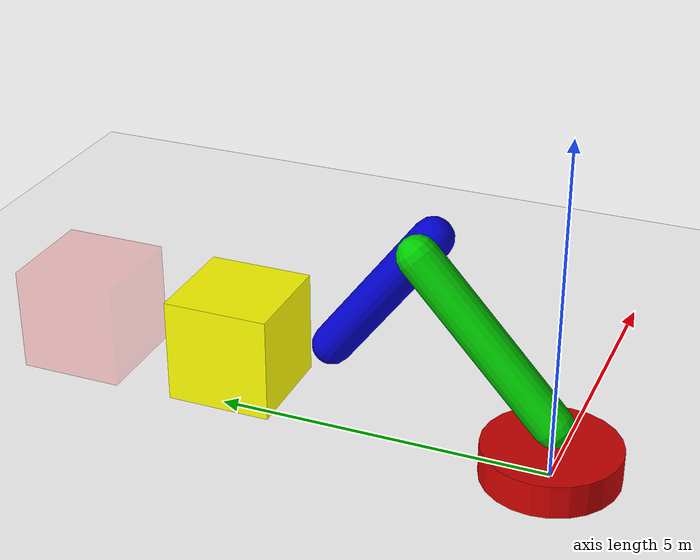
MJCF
<mujoco model="robot_arm">
    <compiler inertiafromgeom="true" angle="degree"/>

    <option timestep="0.005" iterations="50" tolerance="1e-10" solver="Newton" jacobian="dense" cone="pyramidal"/>

    <size nconmax="50" njmax="200" nstack="10000"/>

    <asset>
        <texture type="skybox" builtin="gradient" rgb1="1 1 1" rgb2=".6 .8 1"
                 width="256" height="256"/>
    </asset>

    <worldbody>
        <light pos="0 0 10" dir="0 0 -1" diffuse=".5 .5 .5"/>

        <!-- GROUND -->
        <geom name="ground" type="plane" size="20 20 .001" rgba="1 1 1 1"/>

        <!-- BASE -->
        <body name="base" pos="0 0 0">
            <inertial pos="0 0 .25" mass="50"/>
            <geom name="base" type="cylinder" rgba=".8 0 0 1" fromto="0 0 0 0 0 .5" size="1"/>
            <!-- UPPER ARM -->
            <body name="upper_arm">
                <inertial pos="0 1 1.9" mass="10"/>
                <geom name="upper_arm" type="capsule" density="100" rgba="0 .8 0 1" fromto="0 0 .8 0 2 3" size=".3"/>
                <joint name="shoulder" type="hinge" pos="0 0 .8" axis="1 0 0" range="-48 132"
                       damping="100" stiffness="200" limited="true"/>
                <!-- LOWER ARM -->
                <body name="lower_arm">
                    <inertial pos=".6 2.75 2" mass="10"/>
                    <geom name="lower_arm" type="capsule" density="100" rgba="0 0 .8 1" fromto=".6 2 3 .6 3.5 1" size=".3"/>
                    <joint name="elbow" type="hinge" pos=".6 2 3" axis="1 0 0" range="-79 100"
                       damping="100" stiffness="200" limited="true"/>
                </body>
            </body>
        </body>

        <!-- BOX -->
        <body name="box" pos=".6 5 .8">
            <inertial pos=".6 5 .8" mass="5"/>
            <geom name="box" type="box" rgba="1 1 0 1" size=".8 .8 .8"/>
            <joint type="free"/>
        </body>

        <!-- TARGET -->
        <body name="target" pos=".6 7.5 .8">
            <geom name="target" type="box" rgba="1 0 0 .2" size=".8 .8 .8"/>
        </body>
    </worldbody>

    <actuator>
        <general name="shoulder" joint="shoulder" gear="500" ctrlrange="-90 90" ctrllimited="true"/>
        <general name="elbow" joint="elbow" gear="500" ctrlrange="-90 90" ctrllimited="true"/>
    </actuator>

    <contact>
        <pair name="box-ground" geom1="box" geom2="ground" condim="3" friction=".3 .3"/>
        <pair name="box-lower_arm" geom1="box" geom2="lower_arm" condim="3" friction="1 1 1 1 1"/>
        <exclude name="box-target" body1="box" body2="target"/>
    </contact>

    <sensor>
        <jointpos name="shoulder_pos_sensor" joint="shoulder"/>
        <jointpos name="elbow_pos_sensor" joint="elbow"/>
        <actuatorfrc name="shoulder_force_sensor" actuator="shoulder"/>
        <actuatorfrc name="elbow_force_sensor" actuator="elbow"/>
    </sensor>

</mujoco>
